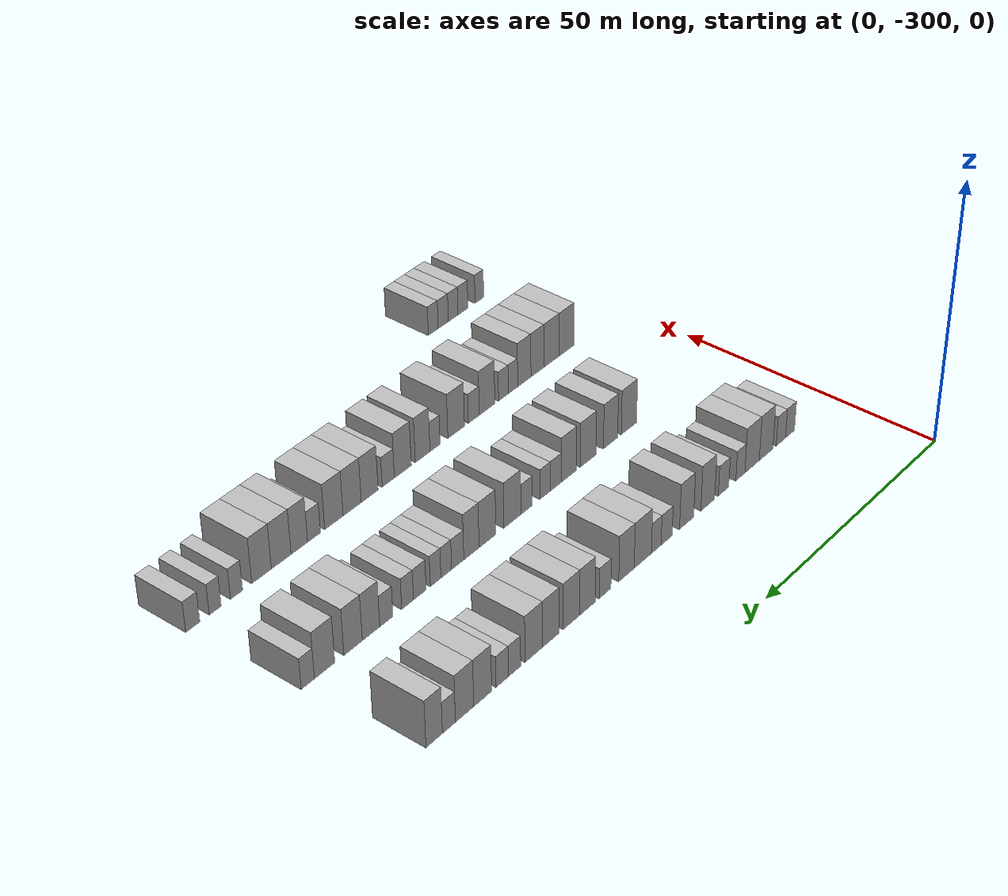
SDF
<sdf version="1.6">
 <world name="default">
  <model name="building_24">
   <static>1</static>
   <pose>25.0000 -286.8395 0 0.000000 0.000000 0.000000</pose>
   <link name="link">
    <pose>0 0 3.00 0 0 0</pose>
    <collision name="collision"><geometry><box><size>10.0000 2.7032 6.0000</size></box></geometry></collision>
    <visual name="visual">
     <cast_shadows>0</cast_shadows>
     <geometry><box><size>10.0000 2.7032 6.0000</size></box></geometry>
     <material>
      <script>
       <uri>model://HANNAS_wall/materials/scripts</uri>
       <uri>model://HANNAS_wall/materials/textures</uri>
       <name>vrc/HANNAS_wall</name>
      </script>
     </material>
    </visual>
   </link>
  </model>
  <model name="building_25">
   <static>1</static>
   <pose>25.0000 -284.1125 0 0.000000 0.000000 0.000000</pose>
   <link name="link">
    <pose>0 0 3.00 0 0 0</pose>
    <collision name="collision"><geometry><box><size>10.0000 2.7508 6.0000</size></box></geometry></collision>
    <visual name="visual">
     <cast_shadows>0</cast_shadows>
     <geometry><box><size>10.0000 2.7508 6.0000</size></box></geometry>
     <material>
      <script>
       <uri>model://HANNAS_wall/materials/scripts</uri>
       <uri>model://HANNAS_wall/materials/textures</uri>
       <name>vrc/HANNAS_wall</name>
      </script>
     </material>
    </visual>
   </link>
  </model>
  <model name="building_26">
   <static>1</static>
   <pose>25.0000 -279.7349 0 0.000000 0.000000 0.000000</pose>
   <link name="link">
    <pose>0 0 4.50 0 0 0</pose>
    <collision name="collision"><geometry><box><size>10.0000 4.0044 9.0000</size></box></geometry></collision>
    <visual name="visual">
     <cast_shadows>0</cast_shadows>
     <geometry><box><size>10.0000 4.0044 9.0000</size></box></geometry>
     <material>
      <script>
       <uri>model://HANNAS_wall/materials/scripts</uri>
       <uri>model://HANNAS_wall/materials/textures</uri>
       <name>vrc/HANNAS_wall</name>
      </script>
     </material>
    </visual>
   </link>
  </model>
  <model name="building_27">
   <static>1</static>
   <pose>25.0000 -275.6463 0 0.000000 0.000000 0.000000</pose>
   <link name="link">
    <pose>0 0 4.50 0 0 0</pose>
    <collision name="collision"><geometry><box><size>10.0000 4.1728 9.0000</size></box></geometry></collision>
    <visual name="visual">
     <cast_shadows>0</cast_shadows>
     <geometry><box><size>10.0000 4.1728 9.0000</size></box></geometry>
     <material>
      <script>
       <uri>model://HANNAS_wall/materials/scripts</uri>
       <uri>model://HANNAS_wall/materials/textures</uri>
       <name>vrc/HANNAS_wall</name>
      </script>
     </material>
    </visual>
   </link>
  </model>
  <model name="building_28">
   <static>1</static>
   <pose>25.0000 -272.2609 0 0.000000 0.000000 0.000000</pose>
   <link name="link">
    <pose>0 0 3.00 0 0 0</pose>
    <collision name="collision"><geometry><box><size>10.0000 2.5982 6.0000</size></box></geometry></collision>
    <visual name="visual">
     <cast_shadows>0</cast_shadows>
     <geometry><box><size>10.0000 2.5982 6.0000</size></box></geometry>
     <material>
      <script>
       <uri>model://HANNAS_wall/materials/scripts</uri>
       <uri>model://HANNAS_wall/materials/textures</uri>
       <name>vrc/HANNAS_wall</name>
      </script>
     </material>
    </visual>
   </link>
  </model>
  <model name="building_29">
   <static>1</static>
   <pose>25.0000 -267.4747 0 0.000000 0.000000 0.000000</pose>
   <link name="link">
    <pose>0 0 3.00 0 0 0</pose>
    <collision name="collision"><geometry><box><size>10.0000 2.9742 6.0000</size></box></geometry></collision>
    <visual name="visual">
     <cast_shadows>0</cast_shadows>
     <geometry><box><size>10.0000 2.9742 6.0000</size></box></geometry>
     <material>
      <script>
       <uri>model://HANNAS_wall/materials/scripts</uri>
       <uri>model://HANNAS_wall/materials/textures</uri>
       <name>vrc/HANNAS_wall</name>
      </script>
     </material>
    </visual>
   </link>
  </model>
  <model name="building_30">
   <static>1</static>
   <pose>25.0000 -263.0739 0 0.000000 0.000000 0.000000</pose>
   <link name="link">
    <pose>0 0 4.50 0 0 0</pose>
    <collision name="collision"><geometry><box><size>10.0000 3.8273 9.0000</size></box></geometry></collision>
    <visual name="visual">
     <cast_shadows>0</cast_shadows>
     <geometry><box><size>10.0000 3.8273 9.0000</size></box></geometry>
     <material>
      <script>
       <uri>model://HANNAS_wall/materials/scripts</uri>
       <uri>model://HANNAS_wall/materials/textures</uri>
       <name>vrc/HANNAS_wall</name>
      </script>
     </material>
    </visual>
   </link>
  </model>
  <model name="building_31">
   <static>1</static>
   <pose>25.0000 -257.2364 0 0.000000 0.000000 0.000000</pose>
   <link name="link">
    <pose>0 0 4.50 0 0 0</pose>
    <collision name="collision"><geometry><box><size>10.0000 3.8477 9.0000</size></box></geometry></collision>
    <visual name="visual">
     <cast_shadows>0</cast_shadows>
     <geometry><box><size>10.0000 3.8477 9.0000</size></box></geometry>
     <material>
      <script>
       <uri>model://HANNAS_wall/materials/scripts</uri>
       <uri>model://HANNAS_wall/materials/textures</uri>
       <name>vrc/HANNAS_wall</name>
      </script>
     </material>
    </visual>
   </link>
  </model>
  <model name="building_32">
   <static>1</static>
   <pose>25.0000 -251.8400 0 0.000000 0.000000 0.000000</pose>
   <link name="link">
    <pose>0 0 3.00 0 0 0</pose>
    <collision name="collision"><geometry><box><size>10.0000 2.9451 6.0000</size></box></geometry></collision>
    <visual name="visual">
     <cast_shadows>0</cast_shadows>
     <geometry><box><size>10.0000 2.9451 6.0000</size></box></geometry>
     <material>
      <script>
       <uri>model://HANNAS_wall/materials/scripts</uri>
       <uri>model://HANNAS_wall/materials/textures</uri>
       <name>vrc/HANNAS_wall</name>
      </script>
     </material>
    </visual>
   </link>
  </model>
  <model name="building_33">
   <static>1</static>
   <pose>25.0000 -249.0780 0 0.000000 0.000000 0.000000</pose>
   <link name="link">
    <pose>0 0 3.00 0 0 0</pose>
    <collision name="collision"><geometry><box><size>10.0000 2.5788 6.0000</size></box></geometry></collision>
    <visual name="visual">
     <cast_shadows>0</cast_shadows>
     <geometry><box><size>10.0000 2.5788 6.0000</size></box></geometry>
     <material>
      <script>
       <uri>model://HANNAS_wall/materials/scripts</uri>
       <uri>model://HANNAS_wall/materials/textures</uri>
       <name>vrc/HANNAS_wall</name>
      </script>
     </material>
    </visual>
   </link>
  </model>
  <model name="building_34">
   <static>1</static>
   <pose>25.0000 -245.5456 0 0.000000 0.000000 0.000000</pose>
   <link name="link">
    <pose>0 0 4.50 0 0 0</pose>
    <collision name="collision"><geometry><box><size>10.0000 4.4860 9.0000</size></box></geometry></collision>
    <visual name="visual">
     <cast_shadows>0</cast_shadows>
     <geometry><box><size>10.0000 4.4860 9.0000</size></box></geometry>
     <material>
      <script>
       <uri>model://HANNAS_wall/materials/scripts</uri>
       <uri>model://HANNAS_wall/materials/textures</uri>
       <name>vrc/HANNAS_wall</name>
      </script>
     </material>
    </visual>
   </link>
  </model>
  <model name="building_35">
   <static>1</static>
   <pose>25.0000 -241.3080 0 0.000000 0.000000 0.000000</pose>
   <link name="link">
    <pose>0 0 4.50 0 0 0</pose>
    <collision name="collision"><geometry><box><size>10.0000 3.9893 9.0000</size></box></geometry></collision>
    <visual name="visual">
     <cast_shadows>0</cast_shadows>
     <geometry><box><size>10.0000 3.9893 9.0000</size></box></geometry>
     <material>
      <script>
       <uri>model://HANNAS_wall/materials/scripts</uri>
       <uri>model://HANNAS_wall/materials/textures</uri>
       <name>vrc/HANNAS_wall</name>
      </script>
     </material>
    </visual>
   </link>
  </model>
  <model name="building_36">
   <static>1</static>
   <pose>25.0000 -235.8335 0 0.000000 0.000000 0.000000</pose>
   <link name="link">
    <pose>0 0 3.00 0 0 0</pose>
    <collision name="collision"><geometry><box><size>10.0000 2.9596 6.0000</size></box></geometry></collision>
    <visual name="visual">
     <cast_shadows>0</cast_shadows>
     <geometry><box><size>10.0000 2.9596 6.0000</size></box></geometry>
     <material>
      <script>
       <uri>model://HANNAS_wall/materials/scripts</uri>
       <uri>model://HANNAS_wall/materials/textures</uri>
       <name>vrc/HANNAS_wall</name>
      </script>
     </material>
    </visual>
   </link>
  </model>
  <model name="building_37">
   <static>1</static>
   <pose>25.0000 -231.4122 0 0.000000 0.000000 0.000000</pose>
   <link name="link">
    <pose>0 0 4.50 0 0 0</pose>
    <collision name="collision"><geometry><box><size>10.0000 3.8830 9.0000</size></box></geometry></collision>
    <visual name="visual">
     <cast_shadows>0</cast_shadows>
     <geometry><box><size>10.0000 3.8830 9.0000</size></box></geometry>
     <material>
      <script>
       <uri>model://HANNAS_wall/materials/scripts</uri>
       <uri>model://HANNAS_wall/materials/textures</uri>
       <name>vrc/HANNAS_wall</name>
      </script>
     </material>
    </visual>
   </link>
  </model>
  <model name="building_38">
   <static>1</static>
   <pose>25.0000 -227.4498 0 0.000000 0.000000 0.000000</pose>
   <link name="link">
    <pose>0 0 4.50 0 0 0</pose>
    <collision name="collision"><geometry><box><size>10.0000 4.0419 9.0000</size></box></geometry></collision>
    <visual name="visual">
     <cast_shadows>0</cast_shadows>
     <geometry><box><size>10.0000 4.0419 9.0000</size></box></geometry>
     <material>
      <script>
       <uri>model://HANNAS_wall/materials/scripts</uri>
       <uri>model://HANNAS_wall/materials/textures</uri>
       <name>vrc/HANNAS_wall</name>
      </script>
     </material>
    </visual>
   </link>
  </model>
  <model name="building_39">
   <static>1</static>
   <pose>25.0000 -222.4432 0 0.000000 0.000000 0.000000</pose>
   <link name="link">
    <pose>0 0 4.50 0 0 0</pose>
    <collision name="collision"><geometry><box><size>10.0000 3.9713 9.0000</size></box></geometry></collision>
    <visual name="visual">
     <cast_shadows>0</cast_shadows>
     <geometry><box><size>10.0000 3.9713 9.0000</size></box></geometry>
     <material>
      <script>
       <uri>model://HANNAS_wall/materials/scripts</uri>
       <uri>model://HANNAS_wall/materials/textures</uri>
       <name>vrc/HANNAS_wall</name>
      </script>
     </material>
    </visual>
   </link>
  </model>
  <model name="building_40">
   <static>1</static>
   <pose>25.0000 -218.3699 0 0.000000 0.000000 0.000000</pose>
   <link name="link">
    <pose>0 0 4.50 0 0 0</pose>
    <collision name="collision"><geometry><box><size>10.0000 4.1753 9.0000</size></box></geometry></collision>
    <visual name="visual">
     <cast_shadows>0</cast_shadows>
     <geometry><box><size>10.0000 4.1753 9.0000</size></box></geometry>
     <material>
      <script>
       <uri>model://HANNAS_wall/materials/scripts</uri>
       <uri>model://HANNAS_wall/materials/textures</uri>
       <name>vrc/HANNAS_wall</name>
      </script>
     </material>
    </visual>
   </link>
  </model>
  <model name="building_41">
   <static>1</static>
   <pose>25.0000 -213.8711 0 0.000000 0.000000 0.000000</pose>
   <link name="link">
    <pose>0 0 3.00 0 0 0</pose>
    <collision name="collision"><geometry><box><size>10.0000 2.8223 6.0000</size></box></geometry></collision>
    <visual name="visual">
     <cast_shadows>0</cast_shadows>
     <geometry><box><size>10.0000 2.8223 6.0000</size></box></geometry>
     <material>
      <script>
       <uri>model://HANNAS_wall/materials/scripts</uri>
       <uri>model://HANNAS_wall/materials/textures</uri>
       <name>vrc/HANNAS_wall</name>
      </script>
     </material>
    </visual>
   </link>
  </model>
  <model name="building_42">
   <static>1</static>
   <pose>25.0000 -211.0071 0 0.000000 0.000000 0.000000</pose>
   <link name="link">
    <pose>0 0 3.00 0 0 0</pose>
    <collision name="collision"><geometry><box><size>10.0000 2.9056 6.0000</size></box></geometry></collision>
    <visual name="visual">
     <cast_shadows>0</cast_shadows>
     <geometry><box><size>10.0000 2.9056 6.0000</size></box></geometry>
     <material>
      <script>
       <uri>model://HANNAS_wall/materials/scripts</uri>
       <uri>model://HANNAS_wall/materials/textures</uri>
       <name>vrc/HANNAS_wall</name>
      </script>
     </material>
    </visual>
   </link>
  </model>
  <model name="building_43">
   <static>1</static>
   <pose>25.0000 -206.5180 0 0.000000 0.000000 0.000000</pose>
   <link name="link">
    <pose>0 0 4.50 0 0 0</pose>
    <collision name="collision"><geometry><box><size>10.0000 4.0726 9.0000</size></box></geometry></collision>
    <visual name="visual">
     <cast_shadows>0</cast_shadows>
     <geometry><box><size>10.0000 4.0726 9.0000</size></box></geometry>
     <material>
      <script>
       <uri>model://HANNAS_wall/materials/scripts</uri>
       <uri>model://HANNAS_wall/materials/textures</uri>
       <name>vrc/HANNAS_wall</name>
      </script>
     </material>
    </visual>
   </link>
  </model>
  <model name="building_44">
   <static>1</static>
   <pose>25.0000 -202.4322 0 0.000000 0.000000 0.000000</pose>
   <link name="link">
    <pose>0 0 4.50 0 0 0</pose>
    <collision name="collision"><geometry><box><size>10.0000 4.0990 9.0000</size></box></geometry></collision>
    <visual name="visual">
     <cast_shadows>0</cast_shadows>
     <geometry><box><size>10.0000 4.0990 9.0000</size></box></geometry>
     <material>
      <script>
       <uri>model://HANNAS_wall/materials/scripts</uri>
       <uri>model://HANNAS_wall/materials/textures</uri>
       <name>vrc/HANNAS_wall</name>
      </script>
     </material>
    </visual>
   </link>
  </model>
  <model name="building_45">
   <static>1</static>
   <pose>25.0000 -198.9451 0 0.000000 0.000000 0.000000</pose>
   <link name="link">
    <pose>0 0 3.00 0 0 0</pose>
    <collision name="collision"><geometry><box><size>10.0000 2.8752 6.0000</size></box></geometry></collision>
    <visual name="visual">
     <cast_shadows>0</cast_shadows>
     <geometry><box><size>10.0000 2.8752 6.0000</size></box></geometry>
     <material>
      <script>
       <uri>model://HANNAS_wall/materials/scripts</uri>
       <uri>model://HANNAS_wall/materials/textures</uri>
       <name>vrc/HANNAS_wall</name>
      </script>
     </material>
    </visual>
   </link>
  </model>
  <model name="building_46">
   <static>1</static>
   <pose>25.0000 -195.7043 0 0.000000 0.000000 0.000000</pose>
   <link name="link">
    <pose>0 0 4.50 0 0 0</pose>
    <collision name="collision"><geometry><box><size>10.0000 3.6064 9.0000</size></box></geometry></collision>
    <visual name="visual">
     <cast_shadows>0</cast_shadows>
     <geometry><box><size>10.0000 3.6064 9.0000</size></box></geometry>
     <material>
      <script>
       <uri>model://HANNAS_wall/materials/scripts</uri>
       <uri>model://HANNAS_wall/materials/textures</uri>
       <name>vrc/HANNAS_wall</name>
      </script>
     </material>
    </visual>
   </link>
  </model>
  <model name="building_211">
   <static>1</static>
   <pose>47.0000 -271.6882 0 0.000000 0.000000 0.000000</pose>
   <link name="link">
    <pose>0 0 4.50 0 0 0</pose>
    <collision name="collision"><geometry><box><size>10.0000 4.2826 9.0000</size></box></geometry></collision>
    <visual name="visual">
     <cast_shadows>0</cast_shadows>
     <geometry><box><size>10.0000 4.2826 9.0000</size></box></geometry>
     <material>
      <script>
       <uri>model://HANNAS_wall/materials/scripts</uri>
       <uri>model://HANNAS_wall/materials/textures</uri>
       <name>vrc/HANNAS_wall</name>
      </script>
     </material>
    </visual>
   </link>
  </model>
  <model name="building_212">
   <static>1</static>
   <pose>47.0000 -266.5887 0 0.000000 0.000000 0.000000</pose>
   <link name="link">
    <pose>0 0 4.50 0 0 0</pose>
    <collision name="collision"><geometry><box><size>10.0000 3.9163 9.0000</size></box></geometry></collision>
    <visual name="visual">
     <cast_shadows>0</cast_shadows>
     <geometry><box><size>10.0000 3.9163 9.0000</size></box></geometry>
     <material>
      <script>
       <uri>model://HANNAS_wall/materials/scripts</uri>
       <uri>model://HANNAS_wall/materials/textures</uri>
       <name>vrc/HANNAS_wall</name>
      </script>
     </material>
    </visual>
   </link>
  </model>
  <model name="building_213">
   <static>1</static>
   <pose>47.0000 -260.4942 0 0.000000 0.000000 0.000000</pose>
   <link name="link">
    <pose>0 0 4.50 0 0 0</pose>
    <collision name="collision"><geometry><box><size>10.0000 4.2727 9.0000</size></box></geometry></collision>
    <visual name="visual">
     <cast_shadows>0</cast_shadows>
     <geometry><box><size>10.0000 4.2727 9.0000</size></box></geometry>
     <material>
      <script>
       <uri>model://HANNAS_wall/materials/scripts</uri>
       <uri>model://HANNAS_wall/materials/textures</uri>
       <name>vrc/HANNAS_wall</name>
      </script>
     </material>
    </visual>
   </link>
  </model>
  <model name="building_214">
   <static>1</static>
   <pose>47.0000 -255.3573 0 0.000000 0.000000 0.000000</pose>
   <link name="link">
    <pose>0 0 4.50 0 0 0</pose>
    <collision name="collision"><geometry><box><size>10.0000 4.0011 9.0000</size></box></geometry></collision>
    <visual name="visual">
     <cast_shadows>0</cast_shadows>
     <geometry><box><size>10.0000 4.0011 9.0000</size></box></geometry>
     <material>
      <script>
       <uri>model://HANNAS_wall/materials/scripts</uri>
       <uri>model://HANNAS_wall/materials/textures</uri>
       <name>vrc/HANNAS_wall</name>
      </script>
     </material>
    </visual>
   </link>
  </model>
  <model name="building_215">
   <static>1</static>
   <pose>47.0000 -251.8903 0 0.000000 0.000000 0.000000</pose>
   <link name="link">
    <pose>0 0 3.00 0 0 0</pose>
    <collision name="collision"><geometry><box><size>10.0000 2.9329 6.0000</size></box></geometry></collision>
    <visual name="visual">
     <cast_shadows>0</cast_shadows>
     <geometry><box><size>10.0000 2.9329 6.0000</size></box></geometry>
     <material>
      <script>
       <uri>model://HANNAS_wall/materials/scripts</uri>
       <uri>model://HANNAS_wall/materials/textures</uri>
       <name>vrc/HANNAS_wall</name>
      </script>
     </material>
    </visual>
   </link>
  </model>
  <model name="building_216">
   <static>1</static>
   <pose>47.0000 -249.1083 0 0.000000 0.000000 0.000000</pose>
   <link name="link">
    <pose>0 0 3.00 0 0 0</pose>
    <collision name="collision"><geometry><box><size>10.0000 2.6311 6.0000</size></box></geometry></collision>
    <visual name="visual">
     <cast_shadows>0</cast_shadows>
     <geometry><box><size>10.0000 2.6311 6.0000</size></box></geometry>
     <material>
      <script>
       <uri>model://HANNAS_wall/materials/scripts</uri>
       <uri>model://HANNAS_wall/materials/textures</uri>
       <name>vrc/HANNAS_wall</name>
      </script>
     </material>
    </visual>
   </link>
  </model>
  <model name="building_217">
   <static>1</static>
   <pose>47.0000 -244.3441 0 0.000000 0.000000 0.000000</pose>
   <link name="link">
    <pose>0 0 3.00 0 0 0</pose>
    <collision name="collision"><geometry><box><size>10.0000 2.8974 6.0000</size></box></geometry></collision>
    <visual name="visual">
     <cast_shadows>0</cast_shadows>
     <geometry><box><size>10.0000 2.8974 6.0000</size></box></geometry>
     <material>
      <script>
       <uri>model://HANNAS_wall/materials/scripts</uri>
       <uri>model://HANNAS_wall/materials/textures</uri>
       <name>vrc/HANNAS_wall</name>
      </script>
     </material>
    </visual>
   </link>
  </model>
  <model name="building_218">
   <static>1</static>
   <pose>47.0000 -240.7469 0 0.000000 0.000000 0.000000</pose>
   <link name="link">
    <pose>0 0 4.50 0 0 0</pose>
    <collision name="collision"><geometry><box><size>10.0000 4.2969 9.0000</size></box></geometry></collision>
    <visual name="visual">
     <cast_shadows>0</cast_shadows>
     <geometry><box><size>10.0000 4.2969 9.0000</size></box></geometry>
     <material>
      <script>
       <uri>model://HANNAS_wall/materials/scripts</uri>
       <uri>model://HANNAS_wall/materials/textures</uri>
       <name>vrc/HANNAS_wall</name>
      </script>
     </material>
    </visual>
   </link>
  </model>
  <model name="building_219">
   <static>1</static>
   <pose>47.0000 -234.5233 0 0.000000 0.000000 0.000000</pose>
   <link name="link">
    <pose>0 0 4.50 0 0 0</pose>
    <collision name="collision"><geometry><box><size>10.0000 4.1505 9.0000</size></box></geometry></collision>
    <visual name="visual">
     <cast_shadows>0</cast_shadows>
     <geometry><box><size>10.0000 4.1505 9.0000</size></box></geometry>
     <material>
      <script>
       <uri>model://HANNAS_wall/materials/scripts</uri>
       <uri>model://HANNAS_wall/materials/textures</uri>
       <name>vrc/HANNAS_wall</name>
      </script>
     </material>
    </visual>
   </link>
  </model>
  <model name="building_220">
   <static>1</static>
   <pose>47.0000 -230.5915 0 0.000000 0.000000 0.000000</pose>
   <link name="link">
    <pose>0 0 4.50 0 0 0</pose>
    <collision name="collision"><geometry><box><size>10.0000 3.7131 9.0000</size></box></geometry></collision>
    <visual name="visual">
     <cast_shadows>0</cast_shadows>
     <geometry><box><size>10.0000 3.7131 9.0000</size></box></geometry>
     <material>
      <script>
       <uri>model://HANNAS_wall/materials/scripts</uri>
       <uri>model://HANNAS_wall/materials/textures</uri>
       <name>vrc/HANNAS_wall</name>
      </script>
     </material>
    </visual>
   </link>
  </model>
  <model name="building_221">
   <static>1</static>
   <pose>47.0000 -227.2644 0 0.000000 0.000000 0.000000</pose>
   <link name="link">
    <pose>0 0 3.00 0 0 0</pose>
    <collision name="collision"><geometry><box><size>10.0000 2.9411 6.0000</size></box></geometry></collision>
    <visual name="visual">
     <cast_shadows>0</cast_shadows>
     <geometry><box><size>10.0000 2.9411 6.0000</size></box></geometry>
     <material>
      <script>
       <uri>model://HANNAS_wall/materials/scripts</uri>
       <uri>model://HANNAS_wall/materials/textures</uri>
       <name>vrc/HANNAS_wall</name>
      </script>
     </material>
    </visual>
   </link>
  </model>
  <model name="building_222">
   <static>1</static>
   <pose>47.0000 -224.5150 0 0.000000 0.000000 0.000000</pose>
   <link name="link">
    <pose>0 0 3.00 0 0 0</pose>
    <collision name="collision"><geometry><box><size>10.0000 2.5578 6.0000</size></box></geometry></collision>
    <visual name="visual">
     <cast_shadows>0</cast_shadows>
     <geometry><box><size>10.0000 2.5578 6.0000</size></box></geometry>
     <material>
      <script>
       <uri>model://HANNAS_wall/materials/scripts</uri>
       <uri>model://HANNAS_wall/materials/textures</uri>
       <name>vrc/HANNAS_wall</name>
      </script>
     </material>
    </visual>
   </link>
  </model>
  <model name="building_223">
   <static>1</static>
   <pose>47.0000 -221.9887 0 0.000000 0.000000 0.000000</pose>
   <link name="link">
    <pose>0 0 3.00 0 0 0</pose>
    <collision name="collision"><geometry><box><size>10.0000 2.4948 6.0000</size></box></geometry></collision>
    <visual name="visual">
     <cast_shadows>0</cast_shadows>
     <geometry><box><size>10.0000 2.4948 6.0000</size></box></geometry>
     <material>
      <script>
       <uri>model://HANNAS_wall/materials/scripts</uri>
       <uri>model://HANNAS_wall/materials/textures</uri>
       <name>vrc/HANNAS_wall</name>
      </script>
     </material>
    </visual>
   </link>
  </model>
  <model name="building_224">
   <static>1</static>
   <pose>47.0000 -218.2723 0 0.000000 0.000000 0.000000</pose>
   <link name="link">
    <pose>0 0 3.00 0 0 0</pose>
    <collision name="collision"><geometry><box><size>10.0000 2.9380 6.0000</size></box></geometry></collision>
    <visual name="visual">
     <cast_shadows>0</cast_shadows>
     <geometry><box><size>10.0000 2.9380 6.0000</size></box></geometry>
     <material>
      <script>
       <uri>model://HANNAS_wall/materials/scripts</uri>
       <uri>model://HANNAS_wall/materials/textures</uri>
       <name>vrc/HANNAS_wall</name>
      </script>
     </material>
    </visual>
   </link>
  </model>
  <model name="building_225">
   <static>1</static>
   <pose>47.0000 -215.4376 0 0.000000 0.000000 0.000000</pose>
   <link name="link">
    <pose>0 0 3.00 0 0 0</pose>
    <collision name="collision"><geometry><box><size>10.0000 2.7315 6.0000</size></box></geometry></collision>
    <visual name="visual">
     <cast_shadows>0</cast_shadows>
     <geometry><box><size>10.0000 2.7315 6.0000</size></box></geometry>
     <material>
      <script>
       <uri>model://HANNAS_wall/materials/scripts</uri>
       <uri>model://HANNAS_wall/materials/textures</uri>
       <name>vrc/HANNAS_wall</name>
      </script>
     </material>
    </visual>
   </link>
  </model>
  <model name="building_226">
   <static>1</static>
   <pose>47.0000 -210.5731 0 0.000000 0.000000 0.000000</pose>
   <link name="link">
    <pose>0 0 3.00 0 0 0</pose>
    <collision name="collision"><geometry><box><size>10.0000 2.9976 6.0000</size></box></geometry></collision>
    <visual name="visual">
     <cast_shadows>0</cast_shadows>
     <geometry><box><size>10.0000 2.9976 6.0000</size></box></geometry>
     <material>
      <script>
       <uri>model://HANNAS_wall/materials/scripts</uri>
       <uri>model://HANNAS_wall/materials/textures</uri>
       <name>vrc/HANNAS_wall</name>
      </script>
     </material>
    </visual>
   </link>
  </model>
  <model name="building_227">
   <static>1</static>
   <pose>47.0000 -207.1216 0 0.000000 0.000000 0.000000</pose>
   <link name="link">
    <pose>0 0 4.50 0 0 0</pose>
    <collision name="collision"><geometry><box><size>10.0000 3.9053 9.0000</size></box></geometry></collision>
    <visual name="visual">
     <cast_shadows>0</cast_shadows>
     <geometry><box><size>10.0000 3.9053 9.0000</size></box></geometry>
     <material>
      <script>
       <uri>model://HANNAS_wall/materials/scripts</uri>
       <uri>model://HANNAS_wall/materials/textures</uri>
       <name>vrc/HANNAS_wall</name>
      </script>
     </material>
    </visual>
   </link>
  </model>
  <model name="building_228">
   <static>1</static>
   <pose>47.0000 -203.1334 0 0.000000 0.000000 0.000000</pose>
   <link name="link">
    <pose>0 0 4.50 0 0 0</pose>
    <collision name="collision"><geometry><box><size>10.0000 4.0711 9.0000</size></box></geometry></collision>
    <visual name="visual">
     <cast_shadows>0</cast_shadows>
     <geometry><box><size>10.0000 4.0711 9.0000</size></box></geometry>
     <material>
      <script>
       <uri>model://HANNAS_wall/materials/scripts</uri>
       <uri>model://HANNAS_wall/materials/textures</uri>
       <name>vrc/HANNAS_wall</name>
      </script>
     </material>
    </visual>
   </link>
  </model>
  <model name="building_229">
   <static>1</static>
   <pose>47.0000 -196.9010 0 0.000000 0.000000 0.000000</pose>
   <link name="link">
    <pose>0 0 4.50 0 0 0</pose>
    <collision name="collision"><geometry><box><size>10.0000 4.3937 9.0000</size></box></geometry></collision>
    <visual name="visual">
     <cast_shadows>0</cast_shadows>
     <geometry><box><size>10.0000 4.3937 9.0000</size></box></geometry>
     <material>
      <script>
       <uri>model://HANNAS_wall/materials/scripts</uri>
       <uri>model://HANNAS_wall/materials/textures</uri>
       <name>vrc/HANNAS_wall</name>
      </script>
     </material>
    </visual>
   </link>
  </model>
  <model name="building_230">
   <static>1</static>
   <pose>47.0000 -193.2853 0 0.000000 0.000000 0.000000</pose>
   <link name="link">
    <pose>0 0 3.00 0 0 0</pose>
    <collision name="collision"><geometry><box><size>10.0000 2.8377 6.0000</size></box></geometry></collision>
    <visual name="visual">
     <cast_shadows>0</cast_shadows>
     <geometry><box><size>10.0000 2.8377 6.0000</size></box></geometry>
     <material>
      <script>
       <uri>model://HANNAS_wall/materials/scripts</uri>
       <uri>model://HANNAS_wall/materials/textures</uri>
       <name>vrc/HANNAS_wall</name>
      </script>
     </material>
    </visual>
   </link>
  </model>
  <model name="building_394">
   <static>1</static>
   <pose>69.0000 -283.2019 0 0.000000 0.000000 0.000000</pose>
   <link name="link">
    <pose>0 0 4.50 0 0 0</pose>
    <collision name="collision"><geometry><box><size>10.0000 4.1188 9.0000</size></box></geometry></collision>
    <visual name="visual">
     <cast_shadows>0</cast_shadows>
     <geometry><box><size>10.0000 4.1188 9.0000</size></box></geometry>
     <material>
      <script>
       <uri>model://HANNAS_wall/materials/scripts</uri>
       <uri>model://HANNAS_wall/materials/textures</uri>
       <name>vrc/HANNAS_wall</name>
      </script>
     </material>
    </visual>
   </link>
  </model>
  <model name="building_395">
   <static>1</static>
   <pose>69.0000 -278.9922 0 0.000000 0.000000 0.000000</pose>
   <link name="link">
    <pose>0 0 4.50 0 0 0</pose>
    <collision name="collision"><geometry><box><size>10.0000 4.3005 9.0000</size></box></geometry></collision>
    <visual name="visual">
     <cast_shadows>0</cast_shadows>
     <geometry><box><size>10.0000 4.3005 9.0000</size></box></geometry>
     <material>
      <script>
       <uri>model://HANNAS_wall/materials/scripts</uri>
       <uri>model://HANNAS_wall/materials/textures</uri>
       <name>vrc/HANNAS_wall</name>
      </script>
     </material>
    </visual>
   </link>
  </model>
  <model name="building_396">
   <static>1</static>
   <pose>69.0000 -275.0291 0 0.000000 0.000000 0.000000</pose>
   <link name="link">
    <pose>0 0 4.50 0 0 0</pose>
    <collision name="collision"><geometry><box><size>10.0000 3.6258 9.0000</size></box></geometry></collision>
    <visual name="visual">
     <cast_shadows>0</cast_shadows>
     <geometry><box><size>10.0000 3.6258 9.0000</size></box></geometry>
     <material>
      <script>
       <uri>model://HANNAS_wall/materials/scripts</uri>
       <uri>model://HANNAS_wall/materials/textures</uri>
       <name>vrc/HANNAS_wall</name>
      </script>
     </material>
    </visual>
   </link>
  </model>
  <model name="building_397">
   <static>1</static>
   <pose>69.0000 -271.3953 0 0.000000 0.000000 0.000000</pose>
   <link name="link">
    <pose>0 0 4.50 0 0 0</pose>
    <collision name="collision"><geometry><box><size>10.0000 3.6417 9.0000</size></box></geometry></collision>
    <visual name="visual">
     <cast_shadows>0</cast_shadows>
     <geometry><box><size>10.0000 3.6417 9.0000</size></box></geometry>
     <material>
      <script>
       <uri>model://HANNAS_wall/materials/scripts</uri>
       <uri>model://HANNAS_wall/materials/textures</uri>
       <name>vrc/HANNAS_wall</name>
      </script>
     </material>
    </visual>
   </link>
  </model>
  <model name="building_398">
   <static>1</static>
   <pose>69.0000 -268.3112 0 0.000000 0.000000 0.000000</pose>
   <link name="link">
    <pose>0 0 3.00 0 0 0</pose>
    <collision name="collision"><geometry><box><size>10.0000 2.5266 6.0000</size></box></geometry></collision>
    <visual name="visual">
     <cast_shadows>0</cast_shadows>
     <geometry><box><size>10.0000 2.5266 6.0000</size></box></geometry>
     <material>
      <script>
       <uri>model://HANNAS_wall/materials/scripts</uri>
       <uri>model://HANNAS_wall/materials/textures</uri>
       <name>vrc/HANNAS_wall</name>
      </script>
     </material>
    </visual>
   </link>
  </model>
  <model name="building_399">
   <static>1</static>
   <pose>69.0000 -265.7222 0 0.000000 0.000000 0.000000</pose>
   <link name="link">
    <pose>0 0 3.00 0 0 0</pose>
    <collision name="collision"><geometry><box><size>10.0000 2.6515 6.0000</size></box></geometry></collision>
    <visual name="visual">
     <cast_shadows>0</cast_shadows>
     <geometry><box><size>10.0000 2.6515 6.0000</size></box></geometry>
     <material>
      <script>
       <uri>model://HANNAS_wall/materials/scripts</uri>
       <uri>model://HANNAS_wall/materials/textures</uri>
       <name>vrc/HANNAS_wall</name>
      </script>
     </material>
    </visual>
   </link>
  </model>
  <model name="building_400">
   <static>1</static>
   <pose>69.0000 -261.3307 0 0.000000 0.000000 0.000000</pose>
   <link name="link">
    <pose>0 0 4.50 0 0 0</pose>
    <collision name="collision"><geometry><box><size>10.0000 4.1316 9.0000</size></box></geometry></collision>
    <visual name="visual">
     <cast_shadows>0</cast_shadows>
     <geometry><box><size>10.0000 4.1316 9.0000</size></box></geometry>
     <material>
      <script>
       <uri>model://HANNAS_wall/materials/scripts</uri>
       <uri>model://HANNAS_wall/materials/textures</uri>
       <name>vrc/HANNAS_wall</name>
      </script>
     </material>
    </visual>
   </link>
  </model>
  <model name="building_401">
   <static>1</static>
   <pose>69.0000 -257.8263 0 0.000000 0.000000 0.000000</pose>
   <link name="link">
    <pose>0 0 3.00 0 0 0</pose>
    <collision name="collision"><geometry><box><size>10.0000 2.8771 6.0000</size></box></geometry></collision>
    <visual name="visual">
     <cast_shadows>0</cast_shadows>
     <geometry><box><size>10.0000 2.8771 6.0000</size></box></geometry>
     <material>
      <script>
       <uri>model://HANNAS_wall/materials/scripts</uri>
       <uri>model://HANNAS_wall/materials/textures</uri>
       <name>vrc/HANNAS_wall</name>
      </script>
     </material>
    </visual>
   </link>
  </model>
  <model name="building_402">
   <static>1</static>
   <pose>69.0000 -253.2386 0 0.000000 0.000000 0.000000</pose>
   <link name="link">
    <pose>0 0 4.50 0 0 0</pose>
    <collision name="collision"><geometry><box><size>10.0000 4.2984 9.0000</size></box></geometry></collision>
    <visual name="visual">
     <cast_shadows>0</cast_shadows>
     <geometry><box><size>10.0000 4.2984 9.0000</size></box></geometry>
     <material>
      <script>
       <uri>model://HANNAS_wall/materials/scripts</uri>
       <uri>model://HANNAS_wall/materials/textures</uri>
       <name>vrc/HANNAS_wall</name>
      </script>
     </material>
    </visual>
   </link>
  </model>
  <model name="building_403">
   <static>1</static>
   <pose>69.0000 -247.8063 0 0.000000 0.000000 0.000000</pose>
   <link name="link">
    <pose>0 0 3.00 0 0 0</pose>
    <collision name="collision"><geometry><box><size>10.0000 2.5660 6.0000</size></box></geometry></collision>
    <visual name="visual">
     <cast_shadows>0</cast_shadows>
     <geometry><box><size>10.0000 2.5660 6.0000</size></box></geometry>
     <material>
      <script>
       <uri>model://HANNAS_wall/materials/scripts</uri>
       <uri>model://HANNAS_wall/materials/textures</uri>
       <name>vrc/HANNAS_wall</name>
      </script>
     </material>
    </visual>
   </link>
  </model>
  <model name="building_404">
   <static>1</static>
   <pose>69.0000 -244.6735 0 0.000000 0.000000 0.000000</pose>
   <link name="link">
    <pose>0 0 4.50 0 0 0</pose>
    <collision name="collision"><geometry><box><size>10.0000 3.6995 9.0000</size></box></geometry></collision>
    <visual name="visual">
     <cast_shadows>0</cast_shadows>
     <geometry><box><size>10.0000 3.6995 9.0000</size></box></geometry>
     <material>
      <script>
       <uri>model://HANNAS_wall/materials/scripts</uri>
       <uri>model://HANNAS_wall/materials/textures</uri>
       <name>vrc/HANNAS_wall</name>
      </script>
     </material>
    </visual>
   </link>
  </model>
  <model name="building_405">
   <static>1</static>
   <pose>69.0000 -239.7279 0 0.000000 0.000000 0.000000</pose>
   <link name="link">
    <pose>0 0 4.50 0 0 0</pose>
    <collision name="collision"><geometry><box><size>10.0000 4.1917 9.0000</size></box></geometry></collision>
    <visual name="visual">
     <cast_shadows>0</cast_shadows>
     <geometry><box><size>10.0000 4.1917 9.0000</size></box></geometry>
     <material>
      <script>
       <uri>model://HANNAS_wall/materials/scripts</uri>
       <uri>model://HANNAS_wall/materials/textures</uri>
       <name>vrc/HANNAS_wall</name>
      </script>
     </material>
    </visual>
   </link>
  </model>
  <model name="building_406">
   <static>1</static>
   <pose>69.0000 -236.1404 0 0.000000 0.000000 0.000000</pose>
   <link name="link">
    <pose>0 0 3.00 0 0 0</pose>
    <collision name="collision"><geometry><box><size>10.0000 2.9834 6.0000</size></box></geometry></collision>
    <visual name="visual">
     <cast_shadows>0</cast_shadows>
     <geometry><box><size>10.0000 2.9834 6.0000</size></box></geometry>
     <material>
      <script>
       <uri>model://HANNAS_wall/materials/scripts</uri>
       <uri>model://HANNAS_wall/materials/textures</uri>
       <name>vrc/HANNAS_wall</name>
      </script>
     </material>
    </visual>
   </link>
  </model>
  <model name="building_407">
   <static>1</static>
   <pose>69.0000 -231.6240 0 0.000000 0.000000 0.000000</pose>
   <link name="link">
    <pose>0 0 4.50 0 0 0</pose>
    <collision name="collision"><geometry><box><size>10.0000 4.0493 9.0000</size></box></geometry></collision>
    <visual name="visual">
     <cast_shadows>0</cast_shadows>
     <geometry><box><size>10.0000 4.0493 9.0000</size></box></geometry>
     <material>
      <script>
       <uri>model://HANNAS_wall/materials/scripts</uri>
       <uri>model://HANNAS_wall/materials/textures</uri>
       <name>vrc/HANNAS_wall</name>
      </script>
     </material>
    </visual>
   </link>
  </model>
  <model name="building_408">
   <static>1</static>
   <pose>69.0000 -227.4460 0 0.000000 0.000000 0.000000</pose>
   <link name="link">
    <pose>0 0 4.50 0 0 0</pose>
    <collision name="collision"><geometry><box><size>10.0000 4.3068 9.0000</size></box></geometry></collision>
    <visual name="visual">
     <cast_shadows>0</cast_shadows>
     <geometry><box><size>10.0000 4.3068 9.0000</size></box></geometry>
     <material>
      <script>
       <uri>model://HANNAS_wall/materials/scripts</uri>
       <uri>model://HANNAS_wall/materials/textures</uri>
       <name>vrc/HANNAS_wall</name>
      </script>
     </material>
    </visual>
   </link>
  </model>
  <model name="building_409">
   <static>1</static>
   <pose>69.0000 -223.1332 0 0.000000 0.000000 0.000000</pose>
   <link name="link">
    <pose>0 0 4.50 0 0 0</pose>
    <collision name="collision"><geometry><box><size>10.0000 4.3189 9.0000</size></box></geometry></collision>
    <visual name="visual">
     <cast_shadows>0</cast_shadows>
     <geometry><box><size>10.0000 4.3189 9.0000</size></box></geometry>
     <material>
      <script>
       <uri>model://HANNAS_wall/materials/scripts</uri>
       <uri>model://HANNAS_wall/materials/textures</uri>
       <name>vrc/HANNAS_wall</name>
      </script>
     </material>
    </visual>
   </link>
  </model>
  <model name="building_410">
   <static>1</static>
   <pose>69.0000 -218.4974 0 0.000000 0.000000 0.000000</pose>
   <link name="link">
    <pose>0 0 3.00 0 0 0</pose>
    <collision name="collision"><geometry><box><size>10.0000 2.9527 6.0000</size></box></geometry></collision>
    <visual name="visual">
     <cast_shadows>0</cast_shadows>
     <geometry><box><size>10.0000 2.9527 6.0000</size></box></geometry>
     <material>
      <script>
       <uri>model://HANNAS_wall/materials/scripts</uri>
       <uri>model://HANNAS_wall/materials/textures</uri>
       <name>vrc/HANNAS_wall</name>
      </script>
     </material>
    </visual>
   </link>
  </model>
  <model name="building_411">
   <static>1</static>
   <pose>69.0000 -215.1428 0 0.000000 0.000000 0.000000</pose>
   <link name="link">
    <pose>0 0 4.50 0 0 0</pose>
    <collision name="collision"><geometry><box><size>10.0000 3.7565 9.0000</size></box></geometry></collision>
    <visual name="visual">
     <cast_shadows>0</cast_shadows>
     <geometry><box><size>10.0000 3.7565 9.0000</size></box></geometry>
     <material>
      <script>
       <uri>model://HANNAS_wall/materials/scripts</uri>
       <uri>model://HANNAS_wall/materials/textures</uri>
       <name>vrc/HANNAS_wall</name>
      </script>
     </material>
    </visual>
   </link>
  </model>
  <model name="building_412">
   <static>1</static>
   <pose>69.0000 -211.0487 0 0.000000 0.000000 0.000000</pose>
   <link name="link">
    <pose>0 0 4.50 0 0 0</pose>
    <collision name="collision"><geometry><box><size>10.0000 4.4317 9.0000</size></box></geometry></collision>
    <visual name="visual">
     <cast_shadows>0</cast_shadows>
     <geometry><box><size>10.0000 4.4317 9.0000</size></box></geometry>
     <material>
      <script>
       <uri>model://HANNAS_wall/materials/scripts</uri>
       <uri>model://HANNAS_wall/materials/textures</uri>
       <name>vrc/HANNAS_wall</name>
      </script>
     </material>
    </visual>
   </link>
  </model>
  <model name="building_413">
   <static>1</static>
   <pose>69.0000 -206.6664 0 0.000000 0.000000 0.000000</pose>
   <link name="link">
    <pose>0 0 4.50 0 0 0</pose>
    <collision name="collision"><geometry><box><size>10.0000 4.3329 9.0000</size></box></geometry></collision>
    <visual name="visual">
     <cast_shadows>0</cast_shadows>
     <geometry><box><size>10.0000 4.3329 9.0000</size></box></geometry>
     <material>
      <script>
       <uri>model://HANNAS_wall/materials/scripts</uri>
       <uri>model://HANNAS_wall/materials/textures</uri>
       <name>vrc/HANNAS_wall</name>
      </script>
     </material>
    </visual>
   </link>
  </model>
  <model name="building_414">
   <static>1</static>
   <pose>69.0000 -201.1850 0 0.000000 0.000000 0.000000</pose>
   <link name="link">
    <pose>0 0 3.00 0 0 0</pose>
    <collision name="collision"><geometry><box><size>10.0000 2.6299 6.0000</size></box></geometry></collision>
    <visual name="visual">
     <cast_shadows>0</cast_shadows>
     <geometry><box><size>10.0000 2.6299 6.0000</size></box></geometry>
     <material>
      <script>
       <uri>model://HANNAS_wall/materials/scripts</uri>
       <uri>model://HANNAS_wall/materials/textures</uri>
       <name>vrc/HANNAS_wall</name>
      </script>
     </material>
    </visual>
   </link>
  </model>
  <model name="building_415">
   <static>1</static>
   <pose>69.0000 -196.5997 0 0.000000 0.000000 0.000000</pose>
   <link name="link">
    <pose>0 0 3.00 0 0 0</pose>
    <collision name="collision"><geometry><box><size>10.0000 2.5407 6.0000</size></box></geometry></collision>
    <visual name="visual">
     <cast_shadows>0</cast_shadows>
     <geometry><box><size>10.0000 2.5407 6.0000</size></box></geometry>
     <material>
      <script>
       <uri>model://HANNAS_wall/materials/scripts</uri>
       <uri>model://HANNAS_wall/materials/textures</uri>
       <name>vrc/HANNAS_wall</name>
      </script>
     </material>
    </visual>
   </link>
  </model>
  <model name="building_416">
   <static>1</static>
   <pose>69.0000 -191.8503 0 0.000000 0.000000 0.000000</pose>
   <link name="link">
    <pose>0 0 3.00 0 0 0</pose>
    <collision name="collision"><geometry><box><size>10.0000 2.9581 6.0000</size></box></geometry></collision>
    <visual name="visual">
     <cast_shadows>0</cast_shadows>
     <geometry><box><size>10.0000 2.9581 6.0000</size></box></geometry>
     <material>
      <script>
       <uri>model://HANNAS_wall/materials/scripts</uri>
       <uri>model://HANNAS_wall/materials/textures</uri>
       <name>vrc/HANNAS_wall</name>
      </script>
     </material>
    </visual>
   </link>
  </model>
  <model name="building_578">
   <static>1</static>
   <pose>91.0000 -286.0653 0 0.000000 0.000000 0.000000</pose>
   <link name="link">
    <pose>0 0 3.00 0 0 0</pose>
    <collision name="collision"><geometry><box><size>10.0000 2.4364 6.0000</size></box></geometry></collision>
    <visual name="visual">
     <cast_shadows>0</cast_shadows>
     <geometry><box><size>10.0000 2.4364 6.0000</size></box></geometry>
     <material>
      <script>
       <uri>model://HANNAS_wall/materials/scripts</uri>
       <uri>model://HANNAS_wall/materials/textures</uri>
       <name>vrc/HANNAS_wall</name>
      </script>
     </material>
    </visual>
   </link>
  </model>
  <model name="building_579">
   <static>1</static>
   <pose>91.0000 -281.4579 0 0.000000 0.000000 0.000000</pose>
   <link name="link">
    <pose>0 0 3.00 0 0 0</pose>
    <collision name="collision"><geometry><box><size>10.0000 2.7784 6.0000</size></box></geometry></collision>
    <visual name="visual">
     <cast_shadows>0</cast_shadows>
     <geometry><box><size>10.0000 2.7784 6.0000</size></box></geometry>
     <material>
      <script>
       <uri>model://HANNAS_wall/materials/scripts</uri>
       <uri>model://HANNAS_wall/materials/textures</uri>
       <name>vrc/HANNAS_wall</name>
      </script>
     </material>
    </visual>
   </link>
  </model>
  <model name="building_580">
   <static>1</static>
   <pose>91.0000 -278.7457 0 0.000000 0.000000 0.000000</pose>
   <link name="link">
    <pose>0 0 3.00 0 0 0</pose>
    <collision name="collision"><geometry><box><size>10.0000 2.6460 6.0000</size></box></geometry></collision>
    <visual name="visual">
     <cast_shadows>0</cast_shadows>
     <geometry><box><size>10.0000 2.6460 6.0000</size></box></geometry>
     <material>
      <script>
       <uri>model://HANNAS_wall/materials/scripts</uri>
       <uri>model://HANNAS_wall/materials/textures</uri>
       <name>vrc/HANNAS_wall</name>
      </script>
     </material>
    </visual>
   </link>
  </model>
  <model name="building_581">
   <static>1</static>
   <pose>91.0000 -276.0226 0 0.000000 0.000000 0.000000</pose>
   <link name="link">
    <pose>0 0 3.00 0 0 0</pose>
    <collision name="collision"><geometry><box><size>10.0000 2.8003 6.0000</size></box></geometry></collision>
    <visual name="visual">
     <cast_shadows>0</cast_shadows>
     <geometry><box><size>10.0000 2.8003 6.0000</size></box></geometry>
     <material>
      <script>
       <uri>model://HANNAS_wall/materials/scripts</uri>
       <uri>model://HANNAS_wall/materials/textures</uri>
       <name>vrc/HANNAS_wall</name>
      </script>
     </material>
    </visual>
   </link>
  </model>
  <model name="building_582">
   <static>1</static>
   <pose>91.0000 -273.2902 0 0.000000 0.000000 0.000000</pose>
   <link name="link">
    <pose>0 0 3.00 0 0 0</pose>
    <collision name="collision"><geometry><box><size>10.0000 2.6644 6.0000</size></box></geometry></collision>
    <visual name="visual">
     <cast_shadows>0</cast_shadows>
     <geometry><box><size>10.0000 2.6644 6.0000</size></box></geometry>
     <material>
      <script>
       <uri>model://HANNAS_wall/materials/scripts</uri>
       <uri>model://HANNAS_wall/materials/textures</uri>
       <name>vrc/HANNAS_wall</name>
      </script>
     </material>
    </visual>
   </link>
  </model>
 </world>
</sdf>
